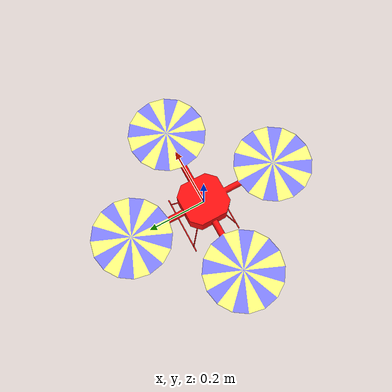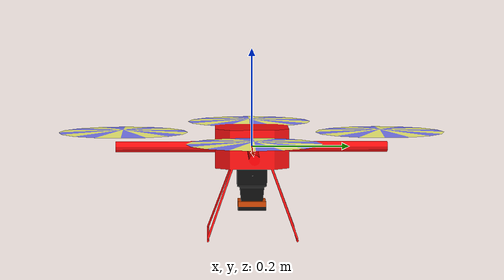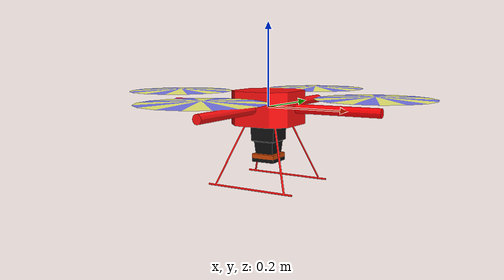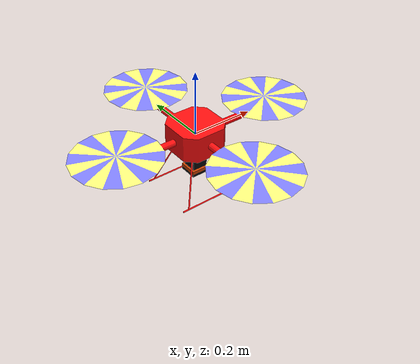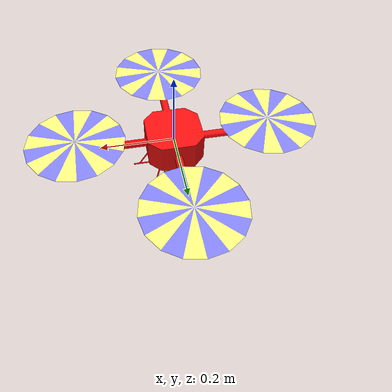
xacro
<?xml version="1.0"?>

<robot name="quadrotor" xmlns:xacro="http://www.ros.org/wiki/xacro">

    <xacro:property name="M_PI" value="3.1415926535897931" />   <!-- 90 degree -->
    <xacro:property name="M_PI/4" value="0.78539816339" />      <!-- 45 degree -->
    <!-- Included URDF Files -->
    <xacro:include filename="$(find hector_quadrotor_description)/urdf/quadrotor_base.urdf.xacro" />

    <!-- Instantiate quadrotor_base_macro once (has no parameters atm) -->
    <xacro:quadrotor_base_macro />

    <!-- Hokuyo UTM-30LX mounted upside down below the quadrotor body -->
    <xacro:include filename="$(find hector_sensors_description)/urdf/hokuyo_utm30lx.urdf.xacro" />
    <xacro:hokuyo_utm30lx name="laser0" parent="base_link" ros_topic="scan" update_rate="40" ray_count="1081" min_angle="-135" max_angle="135">
      <origin xyz="0.0 0.0 -0.097" rpy="${M_PI} 0 0"/>
    </xacro:hokuyo_utm30lx>

    <!-- Kinect -->
    <xacro:include filename="$(find hector_sensors_description)/urdf/kinect_camera.urdf.xacro" />
    <xacro:kinect_camera name="camera" parent="base_link">
      <origin xyz="0.1 0.0 -0.05" rpy="0 1 0"/>
    </xacro:kinect_camera>

</robot>

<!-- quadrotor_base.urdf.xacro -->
<robot xmlns:xacro="http://www.ros.org/wiki/xacro">

  <xacro:property name="pi" value="3.1415926535897931" />

  <!-- Main quadrotor link -->
  <xacro:macro name="quadrotor_base_macro">
    <link name="base_link">
      <inertial>
        <mass value="1.477" />
        <origin xyz="0 0 0" />
        <inertia ixx="0.01152" ixy="0.0" ixz="0.0" iyy="0.01152" iyz="0.0" izz="0.0218" />
      </inertial>

      <visual>
        <origin xyz="0 0 0" rpy="0 0 0" />
        <geometry>
          <mesh filename="package://hector_quadrotor_description/meshes/quadrotor/quadrotor_base.dae"/>
        </geometry>
      </visual>

      <collision>
        <origin xyz="0 0 0" rpy="0 0 0" />
        <geometry>
          <mesh filename="package://hector_quadrotor_description/meshes/quadrotor/quadrotor_base.stl"/>
        </geometry>
      </collision>
    </link>

    <!-- Sonar height sensor -->

  </xacro:macro>
</robot>

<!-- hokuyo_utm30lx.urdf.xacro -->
<robot xmlns:xacro="http://ros.org/wiki/xacro">
    <xacro:property name="M_PI" value="3.1415926535897931" />

    <xacro:macro name="hokuyo_utm30lx_model" params="name parent *origin">
      <joint name="${name}_joint" type="fixed">
        <xacro:insert_block name="origin" />
        <parent link="${parent}"/>
        <child link="${name}_frame"/>
      </joint>

      <link name="${name}_frame">
        <inertial>
          <mass value="0.270" />
          <origin xyz="0 0 0" rpy="0 0 0" />
          <inertia ixx="2.632e-4" ixy="0" ixz="0" iyy="2.632e-4" iyz="0" izz="1.62e-4" />
        </inertial>
        <visual>
          <origin xyz="0 0 0" rpy="0 0 0" />
          <geometry>
          <mesh filename="package://hector_sensors_description/meshes/hokuyo_utm30lx/hokuyo_utm_30lx$(optenv TEST_SELF_FILTER).dae"/>
        </geometry>
        </visual>
        <collision>
          <origin xyz="0.00 0 0.0" rpy="0 ${0.5 * M_PI} 0" />
          <geometry>
	    <cylinder length="0.079" radius="0.0735"/>
        </geometry>
        </collision>
      </link>
    </xacro:macro>

    <xacro:macro name="hokuyo_utm30lx" params="name parent *origin ros_topic update_rate ray_count min_angle max_angle">
      <xacro:hokuyo_utm30lx_model name="${name}" parent="${parent}">
        <xacro:insert_block name="origin" />
      </xacro:hokuyo_utm30lx_model>

      <gazebo reference="${name}_frame">
        <sensor type="ray" name="${name}">
          <always_on>true</always_on>
          <update_rate>${update_rate}</update_rate>
          <pose>0 0 0 0 0 0</pose>
          <visualize>false</visualize>
          <ray>
            <scan>
              <horizontal>
                <samples>${ray_count}</samples>
                <resolution>1</resolution>
                <min_angle>${min_angle * M_PI/180}</min_angle>
                <max_angle>${max_angle * M_PI/180}</max_angle>
              </horizontal>
            </scan>
            <range>
              <min>0.2</min>
              <max>30.0</max>
              <resolution>0.01</resolution>
            </range>
            <noise>
              <type>gaussian</type>
              <mean>0.0</mean>
              <stddev>0.004</stddev>
            </noise>
          </ray>
          <plugin name="gazebo_ros_${name}_controller" filename="libgazebo_ros_laser.so">
            <gaussianNoise>0.005</gaussianNoise>
            <hokuyoMinIntensity>2000</hokuyoMinIntensity>
            <alwaysOn>true</alwaysOn>
	    <robotNamespace>$(arg robot_name)/sensor/</robotNamespace>
            <updateRate>${update_rate}</updateRate>
            <topicName>${ros_topic}</topicName>
            <frameName>${name}_frame</frameName>
          </plugin>
        </sensor>
      </gazebo>
    </xacro:macro>

    <xacro:macro name="hokuyo_utm30lx_gpu" params="name parent *origin ros_topic update_rate ray_count min_angle max_angle">
      <xacro:hokuyo_utm30lx_model name="${name}" parent="${parent}">
        <xacro:insert_block name="origin" />
      </xacro:hokuyo_utm30lx_model>

      <gazebo reference="${name}_frame">
        <sensor type="gpu_ray" name="${name}">
          <update_rate>${update_rate}</update_rate>
          <pose>0 0 0 0 0 0</pose>
          <visualize>false</visualize>
          <ray>
            <scan>
              <horizontal>
                <samples>${ray_count}</samples>
                <resolution>1</resolution>
                <min_angle>${min_angle * M_PI/180}</min_angle>
                <max_angle>${max_angle * M_PI/180}</max_angle>
              </horizontal>
            </scan>
            <range>
              <min>0.2</min>
              <max>30.0</max>
              <resolution>0.01</resolution>
            </range>
            <noise>
              <type>gaussian</type>
              <mean>0.0</mean>
              <stddev>0.004</stddev>
            </noise>
          </ray>
          <plugin name="gazebo_ros_${name}_controller" filename="libgazebo_ros_gpu_laser.so">
            <topicName>${ros_topic}</topicName>
            <frameName>${name}_frame</frameName>
          </plugin>
        </sensor>
      </gazebo>
    </xacro:macro>
</robot>

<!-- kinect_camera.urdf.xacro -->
<robot xmlns:xacro="http://www.ros.org/wiki/xacro">
    <xacro:include filename="$(find hector_xacro_tools)/urdf/inertia_tensors.urdf.xacro"/>
    <xacro:property name="M_PI" value="3.1415926535897931" />

    <xacro:macro name="kinect_camera_model" params="name parent *origin">
      <joint name="${name}_joint" type="fixed">
        <xacro:insert_block name="origin" />
        <parent link="${parent}"/>
        <child link="${name}_link"/>
      </joint>

      <link name="${name}_link">
        <xacro:inertial_sphere mass="0.01" diameter="0.07" />
        <visual>
          <origin xyz="0 0 0" rpy="0 0 0" />
          <geometry>
            <mesh filename="package://hector_sensors_description/meshes/kinect_camera/kinect_camera_simple.dae"/>
          </geometry>
        </visual>
        <collision>
          <origin xyz="0 0 0" rpy="0 0 0" />
          <geometry>
            <mesh filename="package://hector_sensors_description/meshes/kinect_camera/kinect_camera_simple.stl"/>
          </geometry>
        </collision>
      </link>

      <joint name="${name}_depth_joint" type="fixed">
        <origin xyz="0.0 -0.02 0.0" rpy="0 0 0" />
        <parent link="${name}_link" />
        <child link="${name}_depth_frame"/>
      </joint>

      <link name="${name}_depth_frame"/>

      <joint name="${name}_depth_optical_joint" type="fixed">
        <origin xyz="0 0 0" rpy="${-M_PI/2} 0.0 ${-M_PI/2}" />
        <parent link="${name}_depth_frame" />
        <child link="${name}_depth_optical_frame"/>
      </joint>

      <link name="${name}_depth_optical_frame"/>

      <joint name="${name}_rgb_joint" type="fixed">
        <origin xyz="0.0 -0.0125 0.0" rpy="0 0 0" />
        <parent link="${name}_link" />
        <child link="${name}_rgb_frame"/>
      </joint>

      <link name="${name}_rgb_frame"/>

      <joint name="${name}_rgb_optical_joint" type="fixed">
        <origin xyz="0 0 0" rpy="${-M_PI/2} 0.0 ${-M_PI/2}" />
        <parent link="${name}_rgb_frame" />
        <child link="${name}_rgb_optical_frame"/>
      </joint>

      <link name="${name}_rgb_optical_frame"/>

    </xacro:macro>

    <xacro:macro name="kinect_camera" params="name parent *origin">
      <xacro:kinect_camera_model name="${name}" parent="${parent}">
        <xacro:insert_block name="origin" />
      </xacro:kinect_camera_model>

      <gazebo reference="${name}_depth_frame">
        <sensor type="depth" name="${name}">
          <update_rate>20</update_rate>
          <camera>
            <horizontal_fov>${60 * M_PI/180.0}</horizontal_fov>
            <image>
              <format>B8G8R8</format>
              <width>640</width>
              <height>480</height>
            </image>
            <clip>
              <near>0.05</near>
              <far>3</far>
            </clip>
          </camera>
          <plugin name="${name}_camera_controller" filename="libgazebo_ros_openni_kinect.so">
            <imageTopicName>${name}/rgb/image_raw</imageTopicName>
            <cameraInfoTopicName>${name}/rgb/camera_info</cameraInfoTopicName>
            <depthImageTopicName>${name}/depth/image_raw</depthImageTopicName>
            <depthImageCameraInfoTopicName>${name}/depth/camera_info</depthImageCameraInfoTopicName>
            <pointCloudTopicName>${name}/depth/points</pointCloudTopicName>
            <frameName>${name}_depth_optical_frame</frameName>
          </plugin>
        </sensor>
      </gazebo>
    </xacro:macro>
  </robot>
